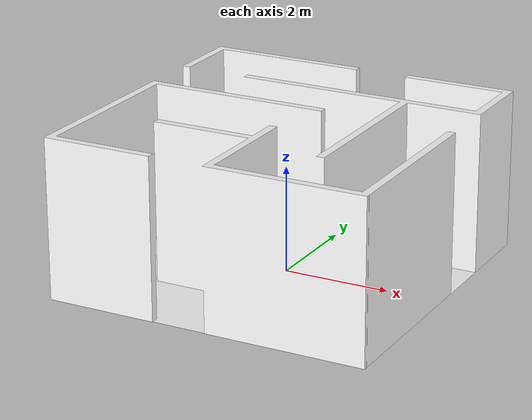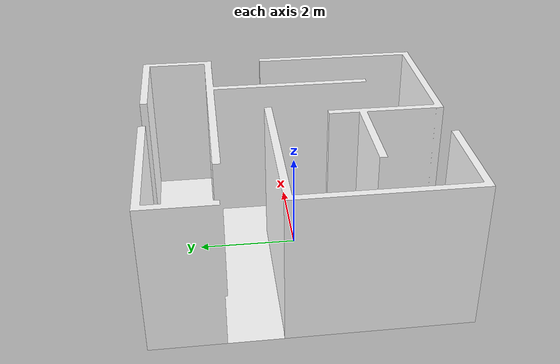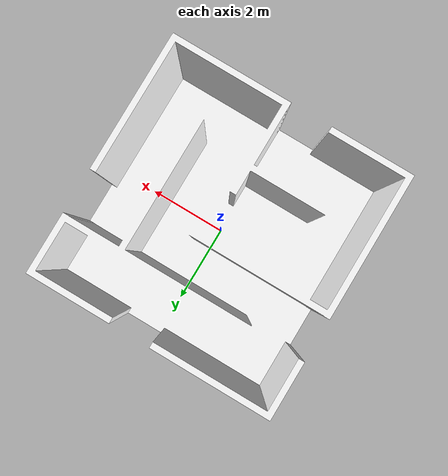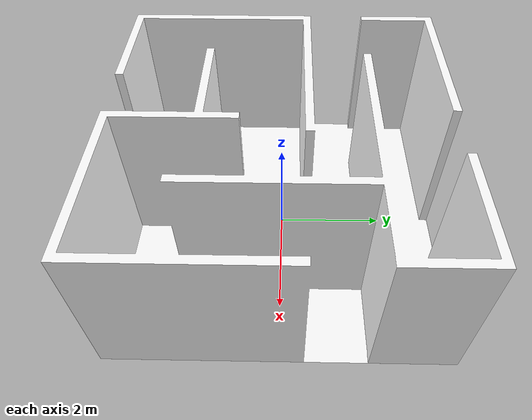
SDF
<?xml version="1.0" ?>
<sdf version="1.6">
  <world name="maze20ftx20ft_4openside">
    <plugin
      filename="gz-sim-user-commands-system"
      name="gz::sim::systems::UserCommands">
    </plugin>
    <physics name="1ms" type="ignored">
      <max_step_size>0.001</max_step_size>
      <real_time_factor>1.0</real_time_factor>
    </physics>
    <plugin
      filename="gz-sim-physics-system"
      name="gz::sim::systems::Physics">
    </plugin>
    <plugin
      filename="gz-sim-sensors-system"
      name="gz::sim::systems::Sensors">
      <render_engine>ogre2</render_engine>
    </plugin>
    <plugin
      filename="gz-sim-scene-broadcaster-system"
      name="gz::sim::systems::SceneBroadcaster">
    </plugin>

    <!-- Set the coordinates for the world origin -->
    <spherical_coordinates>
      <surface_model>EARTH_WGS84</surface_model>
      <world_frame_orientation>ENU</world_frame_orientation>
      <latitude_deg>24.484043629238872</latitude_deg>
      <longitude_deg>54.36068616768677</longitude_deg>
      <elevation>0</elevation>
      <heading_deg>0</heading_deg>
    </spherical_coordinates>

    <gui fullscreen="0">

      <!-- 3D scene -->
      <plugin filename="MinimalScene" name="3D View">
        <gz-gui>
          <title>3D View</title>
          <property type="bool" key="showTitleBar">false</property>
          <property type="string" key="state">docked</property>
        </gz-gui>

        <engine>ogre2</engine>
        <scene>scene</scene>
        <ambient_light>0.4 0.4 0.4</ambient_light>
        <background_color>0.8 0.8 0.8</background_color>
        <camera_pose>0 -6 8 0 0.8 1.56</camera_pose>
      </plugin>

      <!-- Plugins that add functionality to the scene -->
      <plugin filename="EntityContextMenuPlugin" name="Entity context menu">
        <gz-gui>
          <property key="state" type="string">floating</property>
          <property key="width" type="double">5</property>
          <property key="height" type="double">5</property>
          <property key="showTitleBar" type="bool">false</property>
        </gz-gui>
      </plugin>
      <plugin filename="GzSceneManager" name="Scene Manager">
        <gz-gui>
          <property key="resizable" type="bool">false</property>
          <property key="width" type="double">5</property>
          <property key="height" type="double">5</property>
          <property key="state" type="string">floating</property>
          <property key="showTitleBar" type="bool">false</property>
        </gz-gui>
      </plugin>
      <plugin filename="InteractiveViewControl" name="Interactive view control">
        <gz-gui>
          <property key="resizable" type="bool">false</property>
          <property key="width" type="double">5</property>
          <property key="height" type="double">5</property>
          <property key="state" type="string">floating</property>
          <property key="showTitleBar" type="bool">false</property>
        </gz-gui>
      </plugin>
      <plugin filename="CameraTracking" name="Camera Tracking">
        <gz-gui>
          <property key="resizable" type="bool">false</property>
          <property key="width" type="double">5</property>
          <property key="height" type="double">5</property>
          <property key="state" type="string">floating</property>
          <property key="showTitleBar" type="bool">false</property>
        </gz-gui>
      </plugin>
      <plugin filename="SelectEntities" name="Select Entities">
        <gz-gui>
          <property key="resizable" type="bool">false</property>
          <property key="width" type="double">5</property>
          <property key="height" type="double">5</property>
          <property key="state" type="string">floating</property>
          <property key="showTitleBar" type="bool">false</property>
        </gz-gui>
      </plugin>
      <plugin filename="Spawn" name="Spawn Entities">
        <gz-gui>
          <property key="resizable" type="bool">false</property>
          <property key="width" type="double">5</property>
          <property key="height" type="double">5</property>
          <property key="state" type="string">floating</property>
          <property key="showTitleBar" type="bool">false</property>
        </gz-gui>
      </plugin>
      <!-- World control -->
      <plugin filename="WorldControl" name="World control">
        <gz-gui>
          <title>World control</title>
          <property type="bool" key="showTitleBar">false</property>
          <property type="bool" key="resizable">false</property>
          <property type="double" key="height">72</property>
          <property type="double" key="width">121</property>
          <property type="double" key="z">1</property>

          <property type="string" key="state">floating</property>
          <anchors target="3D View">
            <line own="left" target="left"/>
            <line own="bottom" target="bottom"/>
          </anchors>
        </gz-gui>

        <play_pause>true</play_pause>
        <step>true</step>
        <start_paused>true</start_paused>
        <use_event>true</use_event>

      </plugin>

      <!-- World statistics -->
      <plugin filename="WorldStats" name="World stats">
        <gz-gui>
          <title>World stats</title>
          <property type="bool" key="showTitleBar">false</property>
          <property type="bool" key="resizable">false</property>
          <property type="double" key="height">110</property>
          <property type="double" key="width">290</property>
          <property type="double" key="z">1</property>

          <property type="string" key="state">floating</property>
          <anchors target="3D View">
            <line own="right" target="right"/>
            <line own="bottom" target="bottom"/>
          </anchors>
        </gz-gui>

        <sim_time>true</sim_time>
        <real_time>true</real_time>
        <real_time_factor>true</real_time_factor>
        <iterations>true</iterations>
      </plugin>

      <!-- Translate / rotate -->
      <plugin filename="TransformControl" name="Transform control">
        <gz-gui>
          <property key="resizable" type="bool">false</property>
          <property key="width" type="double">250</property>
          <property key="height" type="double">50</property>
          <property key="state" type="string">floating</property>
          <property key="showTitleBar" type="bool">false</property>
          <property key="cardBackground" type="string">#777777</property>
        </gz-gui>
      </plugin>

      <!-- Entity tree -->
      <plugin filename="EntityTree" name="Entity tree">
        <gz-gui>
          <property type="string" key="state">docked_collapsed</property>
        </gz-gui>
      </plugin>

      <!-- Inspector -->
      <plugin filename="ComponentInspector" name="Component inspector">
        <gz-gui>
          <property type="string" key="state">docked</property>
        </gz-gui>
      </plugin>

    </gui>

    <light type="directional" name="sun">
    </light>

    <model name="ground_plane">
      <static>true</static>
      <link name="link">
        <collision name="collision">
          <geometry>
            <plane>
              <normal>0 0 0</normal>
              <size>100 100</size>
            </plane>
          </geometry>
        </collision>
      </link>
    </model>

    <include>
      <uri>models://maze20ftx20ft_4openside</uri>
      <name>maze20ftx20ft_4openside</name>
      <pose>0 0 0 0 0 0</pose>
    </include>

  </world>
</sdf>

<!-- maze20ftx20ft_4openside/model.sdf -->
<sdf version="1.8">
  <model name="test">
    <link name="testlink">
      <visual name="sample_maze">
        <geometry>
          <mesh>
            <uri>maze20ftx20ft_4openside.dae</uri>
            <submesh>
              <name>sample_maze</name>
            </submesh>
          </mesh>
        </geometry>
        <material>
          <diffuse>1.0 1.0 1.0 1.0</diffuse>
          <specular>0.0 0.0 0.0 1.0</specular>
          <pbr>
            <metal>
              <albedo_map>meshes/sample_maze.png</albedo_map>
            </metal>
          </pbr>
        </material>
      </visual>
      <visual name="Cube.003">
        <geometry>
          <mesh>
            <uri>maze20ftx20ft_4openside.dae</uri>
            <submesh>
              <name>Cube.003</name>
            </submesh>
          </mesh>
        </geometry>
        <material>
          <diffuse>1.0 1.0 1.0 1.0</diffuse>
          <specular>0.0 0.0 0.0 1.0</specular>
          <pbr>
            <metal/>
          </pbr>
        </material>
      </visual>
      <visual name="Cube.004">
        <geometry>
          <mesh>
            <uri>maze20ftx20ft_4openside.dae</uri>
            <submesh>
              <name>Cube.004</name>
            </submesh>
          </mesh>
        </geometry>
        <material>
          <diffuse>1.0 1.0 1.0 1.0</diffuse>
          <specular>0.0 0.0 0.0 1.0</specular>
          <pbr>
            <metal/>
          </pbr>
        </material>
      </visual>
      <visual name="Cube.005">
        <geometry>
          <mesh>
            <uri>maze20ftx20ft_4openside.dae</uri>
            <submesh>
              <name>Cube.005</name>
            </submesh>
          </mesh>
        </geometry>
        <material>
          <diffuse>1.0 1.0 1.0 1.0</diffuse>
          <specular>0.0 0.0 0.0 1.0</specular>
          <pbr>
            <metal/>
          </pbr>
        </material>
      </visual>
      <visual name="Cube.006">
        <geometry>
          <mesh>
            <uri>maze20ftx20ft_4openside.dae</uri>
            <submesh>
              <name>Cube.006</name>
            </submesh>
          </mesh>
        </geometry>
        <material>
          <diffuse>1.0 1.0 1.0 1.0</diffuse>
          <specular>0.0 0.0 0.0 1.0</specular>
          <pbr>
            <metal/>
          </pbr>
        </material>
      </visual>
      <visual name="Cube.007">
        <geometry>
          <mesh>
            <uri>maze20ftx20ft_4openside.dae</uri>
            <submesh>
              <name>Cube.007</name>
            </submesh>
          </mesh>
        </geometry>
        <material>
          <diffuse>1.0 1.0 1.0 1.0</diffuse>
          <specular>0.0 0.0 0.0 1.0</specular>
          <pbr>
            <metal/>
          </pbr>
        </material>
      </visual>
      <visual name="Cube.008">
        <geometry>
          <mesh>
            <uri>maze20ftx20ft_4openside.dae</uri>
            <submesh>
              <name>Cube.008</name>
            </submesh>
          </mesh>
        </geometry>
        <material>
          <diffuse>1.0 1.0 1.0 1.0</diffuse>
          <specular>0.0 0.0 0.0 1.0</specular>
          <pbr>
            <metal/>
          </pbr>
        </material>
      </visual>
      <visual name="Cube.010">
        <geometry>
          <mesh>
            <uri>maze20ftx20ft_4openside.dae</uri>
            <submesh>
              <name>Cube.010</name>
            </submesh>
          </mesh>
        </geometry>
        <material>
          <diffuse>1.0 1.0 1.0 1.0</diffuse>
          <specular>0.0 0.0 0.0 1.0</specular>
          <pbr>
            <metal/>
          </pbr>
        </material>
      </visual>
      <visual name="Cube.011">
        <geometry>
          <mesh>
            <uri>maze20ftx20ft_4openside.dae</uri>
            <submesh>
              <name>Cube.011</name>
            </submesh>
          </mesh>
        </geometry>
        <material>
          <diffuse>1.0 1.0 1.0 1.0</diffuse>
          <specular>0.0 0.0 0.0 1.0</specular>
          <pbr>
            <metal/>
          </pbr>
        </material>
      </visual>
      <visual name="Cube.012">
        <geometry>
          <mesh>
            <uri>maze20ftx20ft_4openside.dae</uri>
            <submesh>
              <name>Cube.012</name>
            </submesh>
          </mesh>
        </geometry>
        <material>
          <diffuse>1.0 1.0 1.0 1.0</diffuse>
          <specular>0.0 0.0 0.0 1.0</specular>
          <pbr>
            <metal/>
          </pbr>
        </material>
      </visual>
      <visual name="Cube.002">
        <geometry>
          <mesh>
            <uri>maze20ftx20ft_4openside.dae</uri>
            <submesh>
              <name>Cube.002</name>
            </submesh>
          </mesh>
        </geometry>
        <material>
          <diffuse>1.0 1.0 1.0 1.0</diffuse>
          <specular>0.0 0.0 0.0 1.0</specular>
          <pbr>
            <metal/>
          </pbr>
        </material>
      </visual>
      <visual name="Cube.013">
        <geometry>
          <mesh>
            <uri>maze20ftx20ft_4openside.dae</uri>
            <submesh>
              <name>Cube.013</name>
            </submesh>
          </mesh>
        </geometry>
        <material>
          <diffuse>1.0 1.0 1.0 1.0</diffuse>
          <specular>0.0 0.0 0.0 1.0</specular>
          <pbr>
            <metal/>
          </pbr>
        </material>
      </visual>
      <visual name="Cube.001">
        <geometry>
          <mesh>
            <uri>maze20ftx20ft_4openside.dae</uri>
            <submesh>
              <name>Cube.001</name>
            </submesh>
          </mesh>
        </geometry>
        <material>
          <diffuse>1.0 1.0 1.0 1.0</diffuse>
          <specular>0.0 0.0 0.0 1.0</specular>
          <pbr>
            <metal/>
          </pbr>
        </material>
      </visual>
      <visual name="Cube.009">
        <geometry>
          <mesh>
            <uri>maze20ftx20ft_4openside.dae</uri>
            <submesh>
              <name>Cube.009</name>
            </submesh>
          </mesh>
        </geometry>
        <material>
          <diffuse>1.0 1.0 1.0 1.0</diffuse>
          <specular>0.0 0.0 0.0 1.0</specular>
          <pbr>
            <metal/>
          </pbr>
        </material>
      </visual>
      <collision name="collision">
        <geometry>
          <mesh>
            <uri>maze20ftx20ft_4openside.dae</uri>
          </mesh>
        </geometry>
        <surface/>
        <contact/>
        <collide_bitmask>0x01</collide_bitmask>
      </collision>
    </link>
  </model>
  <static>true</static>
</sdf>
